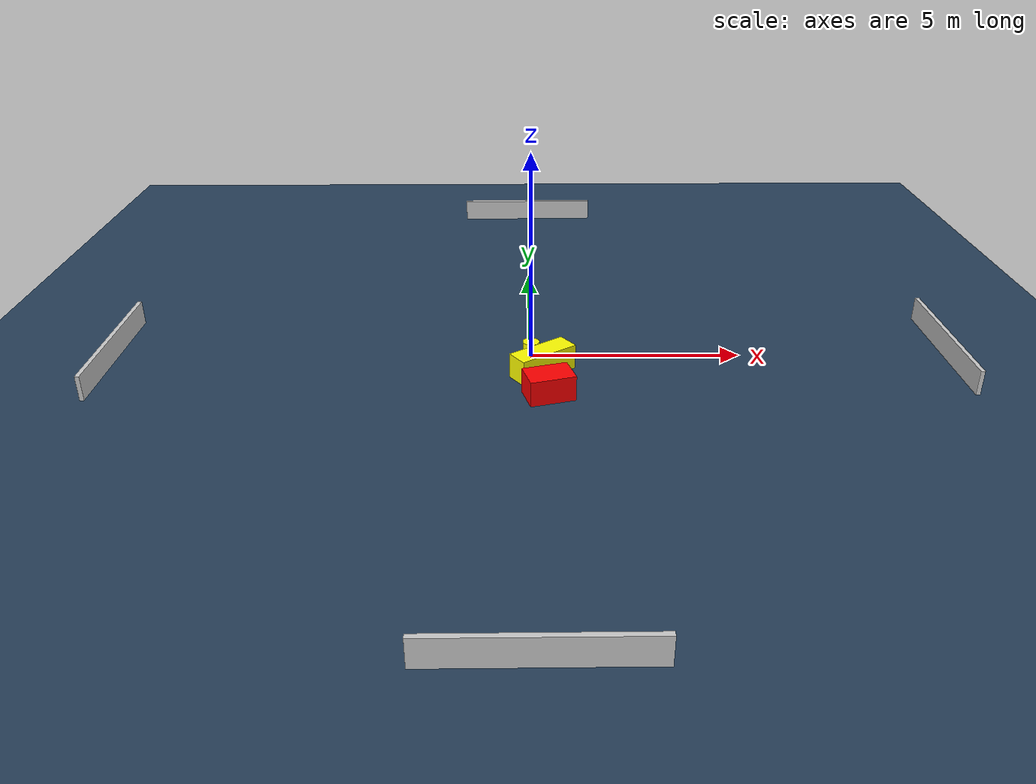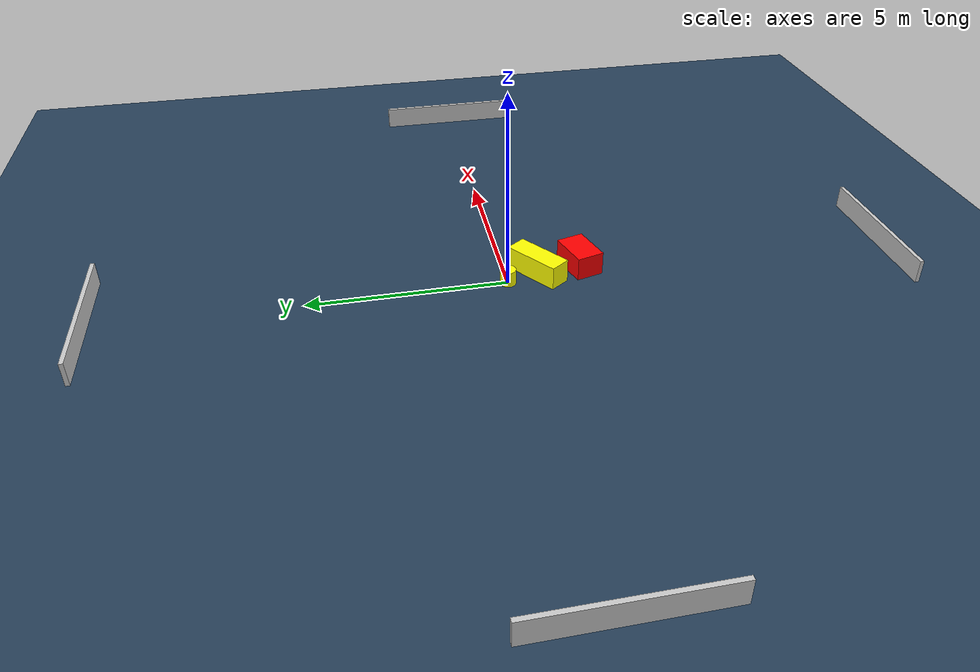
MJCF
<?xml version="1.0" ?>
<mujoco model="generated_environment">
  <option timestep="0.01" integrator="RK4" cone="elliptic"/>
  <default>
    <geom density="1"/>
  </default>
  <asset>
    <texture builtin="gradient" height="3072" name="skybox" rgb1="0.3 0.5 0.7" rgb2="0 0 0" type="skybox" width="512"/>
    <texture builtin="checker" height="300" name="groundplane" rgb1="0.2 0.3 0.4" rgb2="0.1 0.2 0.3" type="2d" width="300"/>
    <material name="groundplane" reflectance="0.2" texrepeat="5 5" texture="groundplane"/>
  </asset>
  <worldbody>
    <light dir="0 0 -1" directional="true" pos="0 0 1.5"/>
    <geom condim="3" friction="0.5 0.005 0.001" material="groundplane" name="floor" pos="0 0 0" size="0 0 0.05" type="plane"/>
    <body name="walls">
      <geom name="wall_1" condim="4" pos="-10.0 0.0 0.3" rgba="0.800000011920929 0.800000011920929 0.800000011920929 1.0" size="0.05 2.0 0.3" type="box"/>
      <geom name="wall_2" condim="4" pos="10.0 0.0 0.3" rgba="0.800000011920929 0.800000011920929 0.800000011920929 1.0" size="0.05 2.0 0.3" type="box"/>
      <geom name="wall_3" condim="4" pos="0.0 -10.0 0.3" rgba="0.800000011920929 0.800000011920929 0.800000011920929 1.0" size="2.0 0.05 0.3" type="box"/>
      <geom name="wall_4" condim="4" pos="0.0 10.0 0.3" rgba="0.800000011920929 0.800000011920929 0.800000011920929 1.0" size="2.0 0.05 0.3" type="box"/>
    </body>
    <body name="robot">
      <joint name="joint_x" type="slide" pos="0 0 0" axis="1 0 0"/>
      <joint name="joint_y" type="slide" pos="0 0 0" axis="0 1 0"/>
      <geom name="robot" type="cylinder" pos="0.0 0.0 0.2" size="0.2 0.2 0.0" mass="5.0" friction="1.0 0.005 0.0001" condim="4" rgba="1.0 1.0 0.0 1.0"/>
    </body>
    <body name="obstacle_1_movable">
      <geom name="obstacle_1_movable" condim="4" pos="0.25984193009954776 -0.809272671873538 0.3" euler="0 0 125.61042635368167" friction="0.0 0.005 0.001" rgba="1.0 1.0 0.0 1.0" size="0.2748142474307773 0.750306231636795 0.3" type="box" mass="0.1"/>
      <joint type="free"/>
    </body>
    <body name="obstacle_2_static">
      <geom name="obstacle_2_static" condim="4" pos="0.37074979043006545 -1.9314864049549505 0.3" euler="0 0 105.74772717359754" friction="0.0 0.005 0.001" rgba="1.0 0.0 0.0 1.0" size="0.3547087795830419 0.5288385346752118 0.3" type="box"/>
    </body>
  </worldbody>
  <actuator>
    <motor name="actuator_x" joint="joint_x" gear="1" ctrlrange="-1 1"/>
    <motor name="actuator_y" joint="joint_y" gear="1" ctrlrange="-1 1"/>
  </actuator>
</mujoco>
